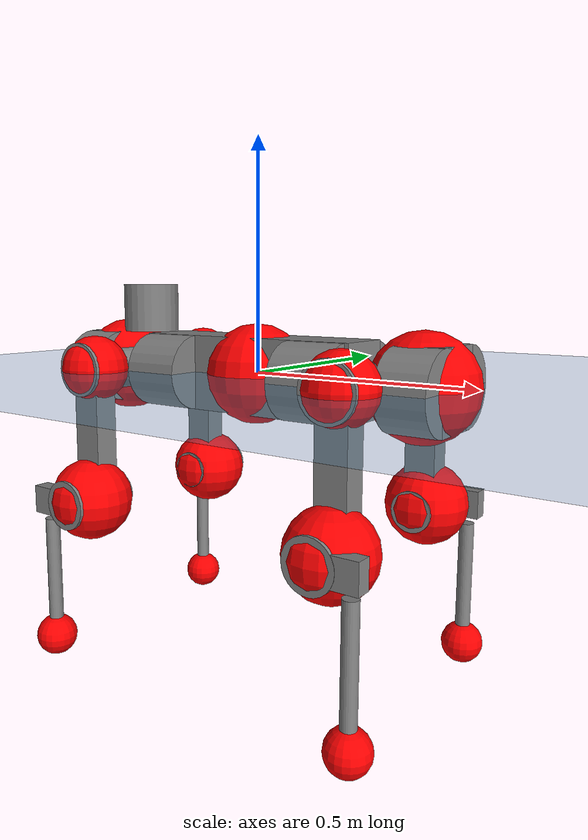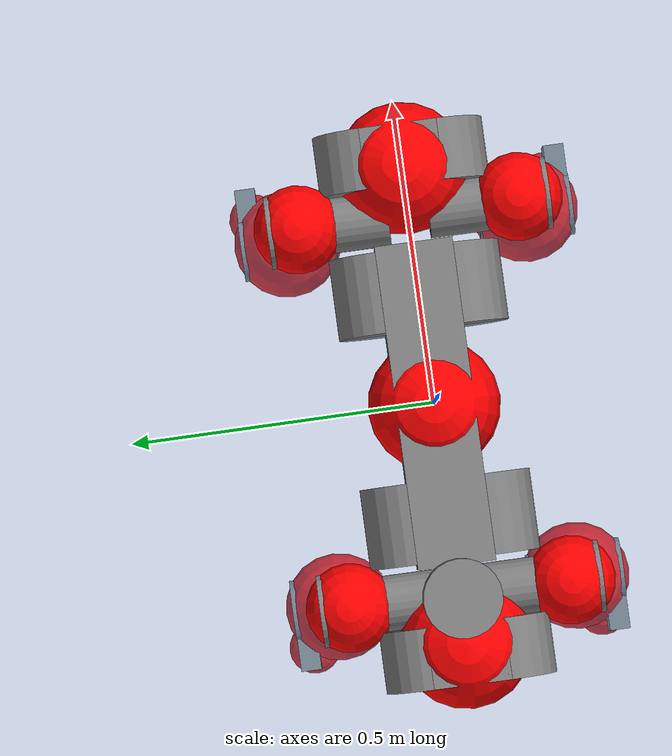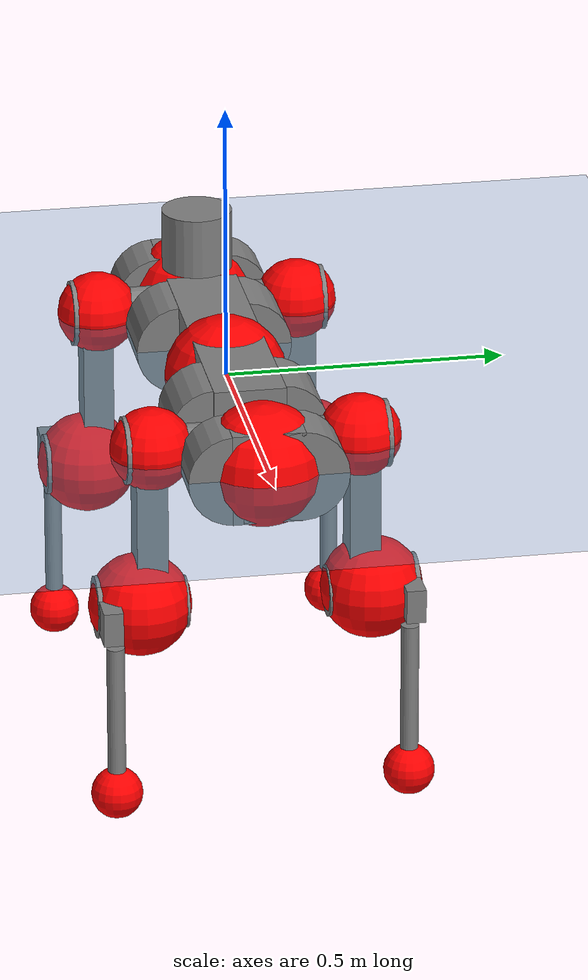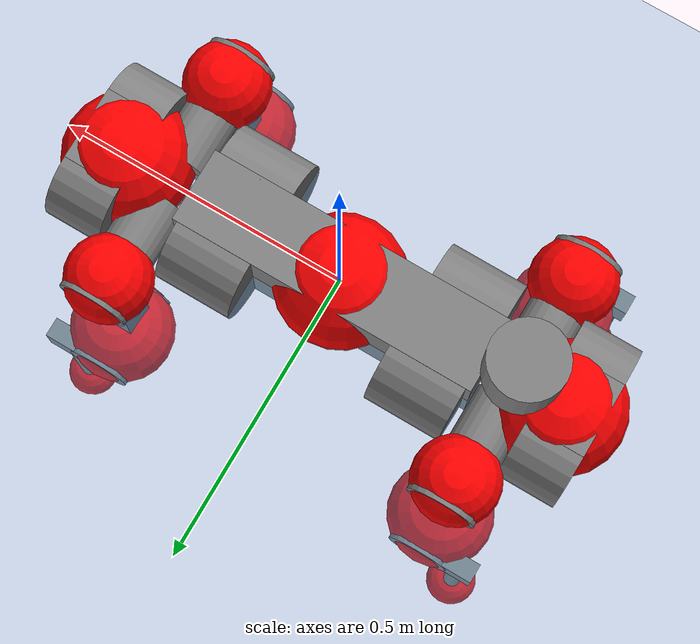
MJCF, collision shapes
<mujoco model="anymal_c">
  <compiler angle="radian" assetdir="assets" balanceinertia="true" inertiafromgeom="false"/>

  <option timestep="0.005" density="1.2" viscosity="2e-05"/>

  <size nkey="1"/>

  <visual>
    <quality shadowsize="8192"/>
    <map shadowclip="0.5"/>
  </visual>

  <default>
    <default class="/">
      <material specular="0" shininess="0.25"/>
      <geom contype="0" conaffinity="0" group="1" solref="-1000 -80"/>
      <site size="0.01 0.005 0.005" group="5"/>
      <general forcelimited="true" forcerange="-80 80" biastype="affine" gainprm="80" biasprm="0 -80 -2"/>
      <default class="anymal_c">
        <joint armature="0.01" damping="0.01" frictionloss="0.1"/>
        <default class="visual">
          <geom type="mesh" group="2"/>
          <default class="visual_zflip"/>
        </default>
        <default class="collision">
          <geom type="cylinder" group="3"/>
          <default class="foot">
            <geom size="0.03 0 0" type="sphere" condim="6" priority="1" friction="0.8 0.02 0.01" solimp="0.015 1 0.03"/>
          </default>
        </default>
      </default>
      <default class="reward_collision_sphere">
        <geom group="5" rgba="1 0 0 1"/>
      </default>
    </default>
  </default>

  <asset>
    <texture type="skybox" colorspace="auto" name="//unnamed_texture_0" builtin="gradient" rgb1="0.95 0.95 0.95" rgb2="0.95 0.95 0.95" width="100" height="600"/>
    <texture type="2d" colorspace="auto" name="texplane" builtin="checker" rgb1="0.345 0.575 0.748" rgb2="0.345 0.575 0.748" markrgb="1 1 1" width="512" height="512"/>
    <texture type="2d" colorspace="linear" name="base" file="base.png"/>
    <texture type="2d" colorspace="linear" name="top_shell" file="top_shell.png"/>
    <texture type="2d" colorspace="linear" name="bottom_shell" file="bottom_shell.png"/>
    <texture type="2d" colorspace="linear" name="remote" file="remote.png"/>
    <texture type="2d" colorspace="linear" name="hatch" file="hatch.png"/>
    <texture type="2d" colorspace="linear" name="handle" file="handle.png"/>
    <texture type="2d" colorspace="linear" name="face" file="face.png"/>
    <texture type="2d" colorspace="linear" name="battery" file="battery.png"/>
    <texture type="2d" colorspace="linear" name="lidar_cage" file="lidar_cage.png"/>
    <texture type="2d" colorspace="linear" name="depth_camera" file="depth_camera.png"/>
    <texture type="2d" colorspace="linear" name="wide_angle_camera" file="wide_angle_camera.png"/>
    <texture type="2d" colorspace="linear" name="lidar" file="lidar.png"/>
    <texture type="2d" colorspace="linear" name="drive" file="drive.png"/>
    <texture type="2d" colorspace="linear" name="hip_l" file="hip_l.png"/>
    <texture type="2d" colorspace="linear" name="shank_l" file="shank_l.png"/>
    <texture type="2d" colorspace="linear" name="foot" file="foot.png"/>
    <texture type="2d" colorspace="linear" name="thigh" file="thigh.png"/>
    <texture type="2d" colorspace="linear" name="shank_r" file="shank_r.png"/>
    <texture type="2d" colorspace="linear" name="hip_r" file="hip_r.png"/>
    <material name="MatPlane" class="/" texture="texplane" texuniform="true" texrepeat="2 2" specular="0.9" shininess="0.5"/>
    <material name="black_plastic" class="/" rgba="0.007 0.007 0.007 1"/>
    <material name="green" class="/" rgba="0.052 0.178 0.033 1"/>
    <material name="red" class="/" rgba="0.178 0.006 0.005 1"/>
    <material name="yellow" class="/" rgba="0.178 0.119 0.006 1"/>
    <material name="lwl" class="/" rgba="0.8 0.8 0.8 1"/>
    <material name="base" class="/" texture="base"/>
    <material name="top_shell" class="/" texture="top_shell"/>
    <material name="bottom_shell" class="/" texture="bottom_shell"/>
    <material name="hip_l" class="/" texture="hip_l"/>
    <material name="thigh" class="/" texture="thigh"/>
    <material name="shank_l" class="/" texture="shank_l"/>
    <material name="foot" class="/" texture="foot"/>
    <material name="hip_r" class="/" texture="hip_r"/>
    <material name="shank" class="/" texture="shank_r"/>
    <material name="hatch" class="/" texture="hatch"/>
    <material name="remote" class="/" texture="remote"/>
    <material name="handle" class="/" texture="handle"/>
    <material name="face" class="/" texture="face"/>
    <material name="depth_camera" class="/" texture="depth_camera"/>
    <material name="wide_angle_camera" class="/" texture="wide_angle_camera"/>
    <material name="battery" class="/" texture="battery"/>
    <material name="lidar_cage" class="/" texture="lidar_cage"/>
    <material name="lidar" class="/" texture="lidar"/>
    <material name="drive" class="/" texture="drive"/>
    <mesh name="base_0" class="/" file="base_0.obj"/>
    <mesh name="base_1" class="/" file="base_1.obj"/>
    <mesh name="base_2" class="/" file="base_2.obj"/>
    <mesh name="base_3" class="/" file="base_3.obj"/>
    <mesh name="base_4" class="/" file="base_4.obj"/>
    <mesh name="base_5" class="/" file="base_5.obj"/>
    <mesh name="top_shell" class="/" file="top_shell.obj"/>
    <mesh name="bottom_shell" class="/" file="bottom_shell.obj"/>
    <mesh name="remote" class="/" file="remote.obj"/>
    <mesh name="handle" class="/" file="handle.obj"/>
    <mesh name="face" class="/" file="face.obj"/>
    <mesh name="wide_angle_camera" class="/" file="wide_angle_camera.obj"/>
    <mesh name="depth_camera" class="/" file="depth_camera.obj"/>
    <mesh name="battery" class="/" file="battery.obj"/>
    <mesh name="lidar_cage" class="/" file="lidar_cage.obj"/>
    <mesh name="lidar" class="/" file="lidar.obj"/>
    <mesh name="drive" class="/" file="drive.obj"/>
    <mesh name="hip_l" class="/" file="hip_l.obj"/>
    <mesh name="thigh" class="/" file="thigh.obj"/>
    <mesh name="shank_l" class="/" file="shank_l.obj"/>
    <mesh name="foot" class="/" file="foot.obj"/>
    <mesh name="hip_r" class="/" file="hip_r.obj"/>
    <mesh name="hatch" class="/" file="hatch.obj"/>
    <mesh name="shank_r" class="/" file="shank_r.obj"/>
  </asset>

  <worldbody>
    <geom name="floor" class="/" size="100 100 0.125" type="plane" group="0" material="MatPlane"/>
    <light name="toplight_shadow" class="/" pos="0 0 5" dir="0.0990148 0.0990148 -0.990148" type="directional" ambient="0.04 0.04 0.04" diffuse="0.55 0.55 0.55" specular="0.12 0.12 0.12"/>
    <light name="toplight_fill" class="/" pos="0 0 5" dir="0.0990148 0.0990148 -0.990148" type="directional" castshadow="false" ambient="0.04 0.04 0.04" diffuse="0.3 0.3 0.3" specular="0.08 0.08 0.08"/>
    <body name="trunk" childclass="anymal_c" pos="-0.00269546 -0.000466412 -0.00271093" quat="0.999999 0.000461043 0.000436223 -0.00126335">
      <inertial pos="-0.000848837 0.00253638 0.0508869" quat="0.503493 0.494749 0.49442 0.507215" mass="14.7895" diaginertia="0.330481 0.247329 0.260376"/>
      <joint name="//unnamed_joint_0" type="free" armature="0" damping="0" frictionloss="0"/>
      <geom name="//unnamed_geom_1" class="visual" material="green" mesh="base_0"/>
      <geom name="//unnamed_geom_2" class="visual" material="yellow" mesh="base_1"/>
      <geom name="//unnamed_geom_3" class="visual" material="red" mesh="base_2"/>
      <geom name="//unnamed_geom_4" class="visual" material="black_plastic" mesh="base_3"/>
      <geom name="//unnamed_geom_5" class="visual" material="lwl" mesh="base_4"/>
      <geom name="//unnamed_geom_6" class="visual" material="base" mesh="base_5"/>
      <geom name="trunk_1" class="collision" size="0.265058 0.0639794 0.0822593" type="box"/>
      <geom name="trunk_2" class="collision" size="0.0822593 0.0662644" pos="0.189957 0.0583465 0" quat="0.707107 0 0.707107 0"/>
      <geom name="trunk_3" class="collision" size="0.0822593 0.0662644" pos="-0.189957 0.0583465 0" quat="0.707107 0 0.707107 0"/>
      <geom name="trunk_4" class="collision" size="0.0822593 0.0662644" pos="0.189957 -0.0583465 0" quat="0.707107 0 0.707107 0"/>
      <geom name="trunk_5" class="collision" size="0.0822593 0.0662644" pos="-0.189957 -0.0583465 0" quat="0.707107 0 0.707107 0"/>
      <geom name="//unnamed_geom_12" class="visual" material="top_shell" mesh="top_shell"/>
      <geom name="//unnamed_geom_13" class="visual" material="bottom_shell" mesh="bottom_shell"/>
      <geom name="//unnamed_geom_14" class="visual" material="remote" mesh="remote"/>
      <geom name="//unnamed_geom_15" class="visual" material="handle" mesh="handle"/>
      <geom name="//unnamed_geom_16" class="visual" pos="0.362011 0 0" quat="1 0 0 0" material="face" mesh="face"/>
      <geom name="trunk_6" class="collision" size="0.0502696 0.0639794 0.0822593" pos="0.410046 0 0" type="box"/>
      <geom name="//unnamed_geom_18" class="collision" size="0.0822593 0.0502696" pos="0.410046 0.0583465 0" quat="0.707107 0 0.707107 0"/>
      <geom name="//unnamed_geom_19" class="collision" size="0.0822593 0.0502696" pos="0.410046 -0.0583465 0" quat="0.707107 0 0.707107 0"/>
      <geom name="//unnamed_geom_20" class="visual" pos="0.403197 0 -0.0314536" quat="0.965926 0 0.258819 0" material="depth_camera" mesh="depth_camera"/>
      <geom name="//unnamed_geom_21" class="visual" pos="0.448037 0 0.0154953" material="wide_angle_camera" mesh="wide_angle_camera"/>
      <geom name="//unnamed_geom_22" class="visual_zflip" pos="-0.362011 0 0" quat="0 0 0 1" material="face" mesh="face"/>
      <geom name="trunk_7" class="collision" size="0.0502696 0.0639794 0.0822593" pos="-0.410046 0 0" quat="0 0 0 1" type="box"/>
      <geom name="//unnamed_geom_24" class="collision" size="0.0822593 0.0502696" pos="-0.410046 -0.0583465 0" quat="0 -0.707107 0 0.707107"/>
      <geom name="//unnamed_geom_25" class="collision" size="0.0822593 0.0502696" pos="-0.410046 0.0583465 0" quat="0 -0.707107 0 0.707107"/>
      <geom name="//unnamed_geom_26" class="visual" pos="-0.403197 0 -0.0314536" quat="0 -0.258819 0 0.965926" material="depth_camera" mesh="depth_camera"/>
      <geom name="//unnamed_geom_27" class="visual_zflip" pos="-0.448037 0 0.0154953" quat="0 0 0 1" material="wide_angle_camera" mesh="wide_angle_camera"/>
      <geom name="//unnamed_geom_28" class="visual" material="battery" mesh="battery"/>
      <geom name="//unnamed_geom_29" class="visual" pos="0 0.063215 0.0288402" quat="0.683013 -0.183013 0.183013 0.683013" material="depth_camera" mesh="depth_camera"/>
      <geom name="//unnamed_geom_30" class="visual" pos="0 -0.063215 0.0288402" quat="0.683013 0.183013 0.183013 -0.683013" material="depth_camera" mesh="depth_camera"/>
      <geom name="//unnamed_geom_31" class="visual" pos="-0.317906 0 0.0760789" quat="1 0 0 0" material="lidar_cage" mesh="lidar_cage"/>
      <geom name="trunk_8" class="collision" size="0.0639794 0.0548395" pos="-0.317906 0 0.138184"/>
      <geom name="//unnamed_geom_33" class="visual" pos="-0.317906 -1.56541e-05 0.147189" quat="0.707107 0 0 -0.707107" material="lidar" mesh="lidar"/>
      <geom name="//unnamed_geom_34" class="visual" pos="0.261923 0.0867579 -3.47701e-09" quat="0.258819 0.965926 0 0" material="drive" mesh="drive"/>
      <geom name="//unnamed_geom_35" class="visual" pos="0.261923 -0.0867579 3.47701e-09" quat="0.258819 -0.965926 0 0" material="drive" mesh="drive"/>
      <geom name="//unnamed_geom_36" class="visual" pos="-0.261923 0.0867579 3.47701e-09" quat="0 0 0.965926 -0.258819" material="drive" mesh="drive"/>
      <geom name="//unnamed_geom_37" class="visual" pos="-0.261923 -0.0867579 -3.47701e-09" quat="0 0 -0.965926 -0.258819" material="drive" mesh="drive"/>
      <geom name="//unnamed_geom_38" class="visual" pos="0.101311 0 0.0755613" quat="1 0 0 0" material="hatch" mesh="hatch"/>
      <geom name="//unnamed_geom_39" class="reward_collision_sphere" size="0.109679"/>
      <geom name="//unnamed_geom_40" class="reward_collision_sphere" size="0.109679" pos="0.393015 0 0"/>
      <geom name="//unnamed_geom_41" class="reward_collision_sphere" size="0.109679" pos="-0.393015 0 0"/>
      <site name="imu" pos="0.231322 0.00561037 0.0379579" size="0.00913992"/>
      <camera name="track" pos="0 -1.66704 0" quat="0.707107 0.707107 0 0" mode="trackcom"/>
      <camera name="ego_camera" pos="0.393015 0 -0.0414035" quat="-0.5 -0.5 0.5 0.5"/>
      <body name="LF_HIP" pos="0.262057 0.0860128 -0.00243716" quat="0.258587 0.965988 -0.000141835 -0.000313041">
        <inertial pos="0.0468485 -0.0135422 -0.00949596" quat="-0.134717 0.714143 -0.142726 0.671923" mass="2.15461" diaginertia="0.00303172 0.00202494 0.00411103"/>
        <joint name="LF_HAA" pos="0 0 0" axis="0.999864 -0.0122202 0.0110673" range="-0.689835 0.479586" armature="0.010389" damping="0.00343292" frictionloss="0.0929001"/>
        <geom name="//unnamed_geom_42" class="visual" pos="0 -0.000204537 3.3595e-05" quat="0.258819 -0.965926 0 0" material="hip_l" mesh="hip_l"/>
        <geom name="//unnamed_geom_43" class="visual" pos="0.0523147 -0.0629374 -0.0378278" quat="0.183013 -0.683013 0.683013 0.183013" material="drive" mesh="drive"/>
        <geom name="//unnamed_geom_44" class="collision" size="0.0456996 0.0639794" pos="0.0523147 -0.00996876 -0.00714727" quat="-0.353553 -0.612372 0.612372 -0.353553"/>
        <body name="LF_THIGH" pos="0.0529537 -0.0608592 -0.0464739" quat="0.182955 -0.683032 0.683036 0.182913">
          <inertial pos="0.027692 -0.00134572 -0.254521" quat="0.992743 -0.00229538 -0.08669 0.0833104" mass="2.31799" diaginertia="0.0151741 0.011473 0.00492502"/>
          <joint name="LF_HFE" pos="0 0 0" axis="0.999993 -0.00345923 -0.00149162" stiffness="0.012201" range="-3.14774 3.15303" armature="0.0079448" damping="0.00368268" frictionloss="0.0911172"/>
          <geom name="//unnamed_geom_45" class="visual" pos="0.000792764 1.24921e-06 0" quat="0.707107 0 0 -0.707107" material="thigh" mesh="thigh"/>
          <geom name="//unnamed_geom_46" class="collision" size="0.0594095 0.0365597" pos="0.0349347 0 0" quat="0.5 0.5 -0.5 -0.5"/>
          <geom name="//unnamed_geom_47" class="collision" size="0.0342747 0.0274198 0.12916" pos="0.026201 0 -0.146272" quat="0.707107 0 0 -0.707107" type="box"/>
          <geom name="//unnamed_geom_48" class="visual" pos="0.0875987 0 -0.295" quat="1 0 0 0" material="drive" mesh="drive"/>
          <geom name="//unnamed_geom_49" class="collision" size="0.0456996 0.0639794" pos="0.026463 0 -0.295" quat="0.707107 0 0.707107 0"/>
          <geom name="//unnamed_geom_50" class="reward_collision_sphere" size="0.0731194" pos="0.0218342 0 0"/>
          <body name="LF_SHANK" pos="0.0875986 0.000574907 -0.292447" quat="1 -2.92541e-06 -5.46882e-06 -7.29885e-06">
            <inertial pos="0.0034486 -0.053772 -0.0807926" quat="0.992846 -0.116725 -0.00213356 -0.025056" mass="0.456158" diaginertia="0.00532554 0.00367497 0.00132927"/>
            <joint name="LF_KFE" pos="0 0 0" axis="1 -0.000439253 -0.000131583" range="-3.08469 3.10274" armature="0.00917065" damping="0.00783782" frictionloss="0.0945107"/>
            <geom name="//unnamed_geom_51" class="visual" pos="0.000258503 0.00137835 0" quat="0.707107 0 0 -0.707107" material="shank_l" mesh="shank_l"/>
            <geom name="LF_kfe_act" class="collision" size="0.0548395 0.0182798" pos="0.0174673 0 0" quat="0.5 0.5 -0.5 -0.5"/>
            <geom name="//unnamed_geom_53" class="collision" size="0.0525536 0.0308472 0.0173659" pos="0.0174673 -0.0479267 0" quat="0.5 0.5 -0.5 -0.5" type="box"/>
            <geom name="//unnamed_geom_54" class="visual" pos="0.0113974 -0.0728641 -0.349828" quat="0.382683 0 0 -0.92388" material="foot" mesh="foot"/>
            <geom name="LF_calf" class="collision" size="0.0159949 0.129103" pos="0.0113974 -0.0733083 -0.174914" quat="0.707107 0 0 -0.707107"/>
            <geom name="LF_foot" class="foot" size="0.0271495" pos="0.0113974 -0.0733083 -0.326539" quat="0.707107 0 0 -0.707107"/>
            <geom name="//unnamed_geom_57" class="reward_collision_sphere" size="0.0913992" pos="-0.0436684 0 0"/>
            <geom name="//unnamed_geom_58" class="reward_collision_sphere" size="0.0456996" pos="0.0113974 -0.0733083 -0.326539"/>
            <site name="LF_foot" class="foot" pos="0.0113974 -0.0733083 -0.326539" quat="0.707107 0 0 -0.707107" size="0.00913992"/>
          </body>
        </body>
      </body>
      <body name="RF_HIP" pos="0.265237 -0.0841515 0.00155909" quat="0.258907 -0.965902 -0.000207525 3.3662e-05">
        <inertial pos="0.0486078 0.0104221 -0.00891944" quat="0.136022 0.679647 0.121041 0.710582" mass="2.143" diaginertia="0.0029159 0.00206664 0.00396866"/>
        <joint name="RF_HAA" pos="0 0 0" axis="1 0.000196898 -0.000203043" range="-0.44014 0.703361" armature="0.00920743" damping="0.0129496" frictionloss="0.0996128"/>
        <geom name="//unnamed_geom_59" class="visual" pos="0 0.000204535 3.35949e-05" quat="0.258819 0.965926 0 0" material="hip_r" mesh="hip_r"/>
        <geom name="//unnamed_geom_60" class="visual" pos="0.0523147 0.0629374 -0.0378278" quat="0.183013 0.683013 0.683013 -0.183013" material="drive" mesh="drive"/>
        <geom name="//unnamed_geom_61" class="collision" size="0.0456996 0.0639794" pos="0.0523147 0.00996876 -0.00714727" quat="-0.353553 0.612372 0.612372 0.353553"/>
        <body name="RF_THIGH" pos="0.0552634 0.061947 -0.0462583" quat="0.183095 0.683109 0.682822 -0.183281">
          <inertial pos="0.026952 -4.62338e-05 -0.255223" quat="0.992824 -0.00499787 -0.0802978 0.0884762" mass="2.42623" diaginertia="0.0150685 0.0122328 0.00505826"/>
          <joint name="RF_HFE" pos="0 0 0" axis="0.999999 -0.00133698 -4.84259e-05" stiffness="0.00521941" range="-3.16661 3.18636" armature="0.00815621" damping="0.00772124" frictionloss="0.0940118"/>
          <geom name="//unnamed_geom_62" class="visual" pos="0.000792764 1.24921e-06 0" quat="0.707107 0 0 -0.707107" material="thigh" mesh="thigh"/>
          <geom name="//unnamed_geom_63" class="collision" size="0.0594095 0.0365597" pos="0.0349347 0 0" quat="0.5 0.5 0.5 0.5"/>
          <geom name="//unnamed_geom_64" class="collision" size="0.0342747 0.0274198 0.12916" pos="0.026201 0 -0.146272" quat="0.707107 0 0 0.707107" type="box"/>
          <geom name="//unnamed_geom_65" class="visual" pos="0.0875987 0 -0.295" quat="1 0 0 0" material="drive" mesh="drive"/>
          <geom name="//unnamed_geom_66" class="collision" size="0.0456996 0.0639794" pos="0.026463 0 -0.295" quat="0.707107 0 0.707107 0"/>
          <geom name="//unnamed_geom_67" class="reward_collision_sphere" size="0.0731194" pos="0.0218342 0 0"/>
          <body name="RF_SHANK" pos="0.0878736 -0.000868122 -0.294272" quat="1 -2.10986e-05 -2.21512e-05 3.47165e-05">
            <inertial pos="0.00544576 0.050272 -0.0833809" quat="0.99192 0.121633 0.00673152 0.0354238" mass="0.43511" diaginertia="0.00531259 0.00373349 0.0013026"/>
            <joint name="RF_KFE" pos="0 0 0" axis="1 0.000411318 -0.000241611" stiffness="0.00115137" range="-3.16327 3.08121" armature="0.0103718" damping="0.0071176" frictionloss="0.0918551"/>
            <geom name="//unnamed_geom_68" class="visual" pos="0.000258501 -0.00137835 0" quat="0.707107 0 0 0.707107" material="shank" mesh="shank_r"/>
            <geom name="RF_kfe_act" class="collision" size="0.0548395 0.0182798" pos="0.0174673 0 0" quat="0.5 0.5 0.5 0.5"/>
            <geom name="//unnamed_geom_70" class="collision" size="0.0525536 0.0308472 0.0173659" pos="0.0174673 0.0479267 0" quat="0.5 0.5 0.5 0.5" type="box"/>
            <geom name="//unnamed_geom_71" class="visual" pos="0.0113975 0.0728641 -0.349828" quat="0.382683 0 0 0.92388" material="foot" mesh="foot"/>
            <geom name="RF_calf" class="collision" size="0.0159949 0.129103" pos="0.0113974 0.0733083 -0.174914" quat="0.707107 0 0 0.707107"/>
            <geom name="RF_foot" class="foot" size="0.029289" pos="0.0113974 0.0733083 -0.326539" quat="0.707107 0 0 0.707107"/>
            <geom name="//unnamed_geom_74" class="reward_collision_sphere" size="0.0913992" pos="-0.0436684 0 0"/>
            <geom name="//unnamed_geom_75" class="reward_collision_sphere" size="0.0456996" pos="0.0113974 0.0733083 -0.326539"/>
            <site name="RF_foot" class="foot" pos="0.0113974 0.0733083 -0.326539" quat="0.707107 0 0 0.707107" size="0.00913992"/>
          </body>
        </body>
      </body>
      <body name="LH_HIP" pos="-0.260858 0.0849741 -0.000553187" quat="-0.000122787 -3.84486e-05 0.965945 -0.258749">
        <inertial pos="0.0497692 0.0135641 -0.010225" quat="0.134829 0.680743 0.129508 0.708264" mass="2.18378" diaginertia="0.00307759 0.00192772 0.00389406"/>
        <joint name="LH_HAA" pos="0 0 0" axis="1 -6.89782e-05 0.000831779" range="-0.480527 0.754257" armature="0.00930712" damping="0" frictionloss="0.0989162"/>
        <geom name="//unnamed_geom_76" class="visual" pos="0 0.000204535 3.35949e-05" quat="-0.258819 -0.965926 0 0" material="hip_r" mesh="hip_r"/>
        <geom name="//unnamed_geom_77" class="visual" pos="0.0523147 0.0629374 -0.0378278" quat="0.183013 0.683013 0.683013 -0.183013" material="drive" mesh="drive"/>
        <geom name="//unnamed_geom_78" class="collision" size="0.0456996 0.0639794" pos="0.0523147 0.00996876 -0.00714727" quat="-0.353553 0.612372 0.612372 0.353553"/>
        <body name="LH_THIGH" pos="0.0510202 0.0599539 -0.0450947" quat="0.182992 0.682965 0.68308 -0.18296">
          <inertial pos="0.0251668 -0.000465439 -0.254522" quat="0.992386 -0.000276023 -0.0874106 0.086772" mass="2.41062" diaginertia="0.0155761 0.0122821 0.00501781"/>
          <joint name="LH_HFE" pos="0 0 0" axis="0.999938 -0.00178608 -0.0109479" range="-3.17406 3.13211" armature="0.0100207" damping="0.0160432" frictionloss="0.0920783"/>
          <geom name="//unnamed_geom_79" class="visual" pos="0.000792764 1.24921e-06 0" quat="0.707107 0 0 -0.707107" material="thigh" mesh="thigh"/>
          <geom name="//unnamed_geom_80" class="collision" size="0.0594095 0.0365597" pos="0.0349347 0 0" quat="0.5 0.5 -0.5 -0.5"/>
          <geom name="//unnamed_geom_81" class="collision" size="0.0342747 0.0274198 0.12916" pos="0.026201 0 -0.146272" quat="0.707107 0 0 -0.707107" type="box"/>
          <geom name="//unnamed_geom_82" class="visual" pos="0.0875987 0 -0.295" quat="1 0 0 0" material="drive" mesh="drive"/>
          <geom name="//unnamed_geom_83" class="collision" size="0.0456996 0.0639794" pos="0.026463 0 -0.295" quat="0.707107 0 0.707107 0"/>
          <geom name="//unnamed_geom_84" class="reward_collision_sphere" size="0.0731194" pos="0.0218342 0 0"/>
          <body name="LH_SHANK" pos="0.0853895 0.00130171 -0.297242" quat="1 -0.000544996 -0.000209186 -0.000180831">
            <inertial pos="0.00760467 0.0480785 -0.0807675" quat="0.992081 0.121564 -0.0103564 0.0298296" mass="0.437515" diaginertia="0.00517072 0.00384647 0.00130712"/>
            <joint name="LH_KFE" pos="0 0 0" axis="0.999894 -0.00982393 -0.0107888" range="-3.11239 3.13884" armature="0.00891411" damping="0.00677367" frictionloss="0.104334"/>
            <geom name="//unnamed_geom_85" class="visual" pos="0.000258501 -0.00137835 0" quat="-0.707107 0 0 -0.707107" material="shank" mesh="shank_r"/>
            <geom name="LH_kfe_act" class="collision" size="0.0548395 0.0182798" pos="0.0174673 0 0" quat="0.5 0.5 -0.5 -0.5"/>
            <geom name="//unnamed_geom_87" class="collision" size="0.0525536 0.0308472 0.0173659" pos="0.0174673 0.0479267 0" quat="0.5 0.5 -0.5 -0.5" type="box"/>
            <geom name="//unnamed_geom_88" class="visual" pos="0.0113975 0.0728641 -0.349828" quat="-0.382683 0 0 -0.92388" material="foot" mesh="foot"/>
            <geom name="LH_calf" class="collision" size="0.0159949 0.129103" pos="0.0113974 0.0733083 -0.174914" quat="0.707107 0 0 -0.707107"/>
            <geom name="LH_foot" class="foot" size="0.0317731" pos="0.0113974 0.0733083 -0.326539" quat="0.707107 0 0 -0.707107"/>
            <geom name="//unnamed_geom_91" class="reward_collision_sphere" size="0.0913992" pos="-0.0436684 0 0"/>
            <geom name="//unnamed_geom_92" class="reward_collision_sphere" size="0.0456996" pos="0.0113974 0.0733083 -0.326539"/>
            <site name="LH_foot" class="foot" pos="0.0113974 0.0733083 -0.326539" quat="0.707107 0 0 -0.707107" size="0.00913992"/>
          </body>
        </body>
      </body>
      <body name="RH_HIP" pos="-0.261984 -0.0890597 0.00082633" quat="-0.000658922 -0.000104451 -0.966036 -0.258408">
        <inertial pos="0.0491739 -0.011073 -0.0115007" quat="-0.127553 0.710008 -0.135058 0.679249" mass="2.17004" diaginertia="0.00295558 0.00195754 0.00386188"/>
        <joint name="RH_HAA" pos="0 0 0" axis="0.999982 0.00591436 -0.00121542" range="-0.685694 0.446141" armature="0.00791383" damping="0" frictionloss="0.100442"/>
        <geom name="//unnamed_geom_93" class="visual" pos="0 -0.000204537 3.3595e-05" quat="-0.258819 0.965926 0 0" material="hip_l" mesh="hip_l"/>
        <geom name="//unnamed_geom_94" class="visual" pos="0.0523147 -0.0629374 -0.0378278" quat="-0.183013 0.683013 -0.683013 -0.183013" material="drive" mesh="drive"/>
        <geom name="//unnamed_geom_95" class="collision" size="0.0456996 0.0639794" pos="0.0523147 -0.00996876 -0.00714727" quat="0.353553 0.612372 -0.612372 0.353553"/>
        <body name="RH_THIGH" pos="0.0525743 -0.0601383 -0.0418162" quat="-0.183151 0.682779 -0.683166 -0.183173">
          <inertial pos="0.0243486 0.00263931 -0.254257" quat="0.993129 -0.00472002 -0.0809226 0.0843987" mass="2.21407" diaginertia="0.0154162 0.0118273 0.00497195"/>
          <joint name="RH_HFE" pos="0 0 0" axis="0.999928 0.00628058 -0.0102316" stiffness="0.00891426" range="-3.16572 3.17508" armature="0.00902748" damping="0.00684276" frictionloss="0.0813574"/>
          <geom name="//unnamed_geom_96" class="visual" pos="0.000792764 1.24921e-06 0" quat="0.707107 0 0 -0.707107" material="thigh" mesh="thigh"/>
          <geom name="//unnamed_geom_97" class="collision" size="0.0594095 0.0365597" pos="0.0349347 0 0" quat="0.5 0.5 0.5 0.5"/>
          <geom name="//unnamed_geom_98" class="collision" size="0.0342747 0.0274198 0.12916" pos="0.026201 0 -0.146272" quat="0.707107 0 0 0.707107" type="box"/>
          <geom name="//unnamed_geom_99" class="visual" pos="0.0875987 0 -0.295" quat="1 0 0 0" material="drive" mesh="drive"/>
          <geom name="//unnamed_geom_100" class="collision" size="0.0456996 0.0639794" pos="0.026463 0 -0.295" quat="0.707107 0 0.707107 0"/>
          <geom name="//unnamed_geom_101" class="reward_collision_sphere" size="0.0731194" pos="0.0218342 0 0"/>
          <body name="RH_SHANK" pos="0.0884354 -6.58896e-05 -0.295715" quat="1 -2.2882e-05 -5.89236e-06 6.83511e-05">
            <inertial pos="0.00683728 -0.0510682 -0.0840416" quat="0.992811 -0.117013 -0.00235719 -0.0250727" mass="0.419678" diaginertia="0.00495685 0.0036322 0.00126697"/>
            <joint name="RH_KFE" pos="0 0 0" axis="0.999955 -0.00417086 0.00852548" range="-3.13247 3.19137" armature="0.0080741" damping="0.00733943" frictionloss="0.092106"/>
            <geom name="//unnamed_geom_102" class="visual" pos="0.000258503 0.00137835 0" quat="0.707107 0 0 -0.707107" material="shank_l" mesh="shank_l"/>
            <geom name="RH_kfe_act" class="collision" size="0.0548395 0.0182798" pos="0.0174673 0 0" quat="0.5 0.5 0.5 0.5"/>
            <geom name="//unnamed_geom_104" class="collision" size="0.0525536 0.0308472 0.0173659" pos="0.0174673 -0.0479267 0" quat="0.5 0.5 0.5 0.5" type="box"/>
            <geom name="//unnamed_geom_105" class="visual" pos="0.0113974 -0.0728641 -0.349828" quat="0.382683 0 0 -0.92388" material="foot" mesh="foot"/>
            <geom name="RH_calf" class="collision" size="0.0159949 0.129103" pos="0.0113974 -0.0733083 -0.174914" quat="0.707107 0 0 0.707107"/>
            <geom name="RH_foot" class="foot" size="0.023577" pos="0.0113974 -0.0733083 -0.326539" quat="0.707107 0 0 0.707107"/>
            <geom name="//unnamed_geom_108" class="reward_collision_sphere" size="0.0913992" pos="-0.0436684 0 0"/>
            <geom name="//unnamed_geom_109" class="reward_collision_sphere" size="0.0456996" pos="0.0113974 -0.0733083 -0.326539"/>
            <site name="RH_foot" class="foot" pos="0.0113974 -0.0733083 -0.326539" quat="0.707107 0 0 0.707107" size="0.00913992"/>
          </body>
        </body>
      </body>
    </body>
  </worldbody>

  <contact>
    <pair class="/" geom1="floor" geom2="LF_foot" name="//unnamed_contact_0"/>
    <pair class="/" geom1="floor" geom2="RF_foot" name="//unnamed_contact_1"/>
    <pair class="/" geom1="floor" geom2="LH_foot" name="//unnamed_contact_2"/>
    <pair class="/" geom1="floor" geom2="RH_foot" name="//unnamed_contact_3"/>
  </contact>

  <actuator>
    <general name="LF_HAA" class="/" joint="LF_HAA" forcerange="-76.1414 76.1414" gainprm="67.1464" biasprm="0 -67.1464 -1.87463"/>
    <general name="LF_HFE" class="/" joint="LF_HFE" forcerange="-78.4517 78.4517" gainprm="67.1464" biasprm="0 -67.1464 -1.87463"/>
    <general name="LF_KFE" class="/" joint="LF_KFE" forcerange="-67.9011 67.9011" gainprm="67.1464" biasprm="0 -67.1464 -1.87463"/>
    <general name="RF_HAA" class="/" joint="RF_HAA" forcerange="-71.3659 71.3659" gainprm="67.1464" biasprm="0 -67.1464 -1.87463"/>
    <general name="RF_HFE" class="/" joint="RF_HFE" forcerange="-82.5821 82.5821" gainprm="67.1464" biasprm="0 -67.1464 -1.87463"/>
    <general name="RF_KFE" class="/" joint="RF_KFE" forcerange="-72.8706 72.8706" gainprm="67.1464" biasprm="0 -67.1464 -1.87463"/>
    <general name="LH_HAA" class="/" joint="LH_HAA" forcerange="-76.987 76.987" gainprm="67.1464" biasprm="0 -67.1464 -1.87463"/>
    <general name="LH_HFE" class="/" joint="LH_HFE" forcerange="-81.3862 81.3862" gainprm="67.1464" biasprm="0 -67.1464 -1.87463"/>
    <general name="LH_KFE" class="/" joint="LH_KFE" forcerange="-69.9657 69.9657" gainprm="67.1464" biasprm="0 -67.1464 -1.87463"/>
    <general name="RH_HAA" class="/" joint="RH_HAA" forcerange="-72.2717 72.2717" gainprm="67.1464" biasprm="0 -67.1464 -1.87463"/>
    <general name="RH_HFE" class="/" joint="RH_HFE" forcerange="-71.7747 71.7747" gainprm="67.1464" biasprm="0 -67.1464 -1.87463"/>
    <general name="RH_KFE" class="/" joint="RH_KFE" forcerange="-66.9947 66.9947" gainprm="67.1464" biasprm="0 -67.1464 -1.87463"/>
  </actuator>

  <sensor>
    <gyro site="imu" name="imu_angular_velocity"/>
    <velocimeter site="imu" name="imu_linear_velocity"/>
    <framelinvel objtype="site" objname="LF_foot" name="LF_foot_global_linear_velocity"/>
    <framelinvel objtype="site" objname="RF_foot" name="RF_foot_global_linear_velocity"/>
    <framelinvel objtype="site" objname="LH_foot" name="LH_foot_global_linear_velocity"/>
    <framelinvel objtype="site" objname="RH_foot" name="RH_foot_global_linear_velocity"/>
  </sensor>

  <keyframe>
    <key name="home" qpos="0 0 0.55 1 0 0 0 0 0.4 -0.8 0 -0.4 0.8 0 -0.4 0.8 0 0.4 -0.8"/>
  </keyframe>
</mujoco>
